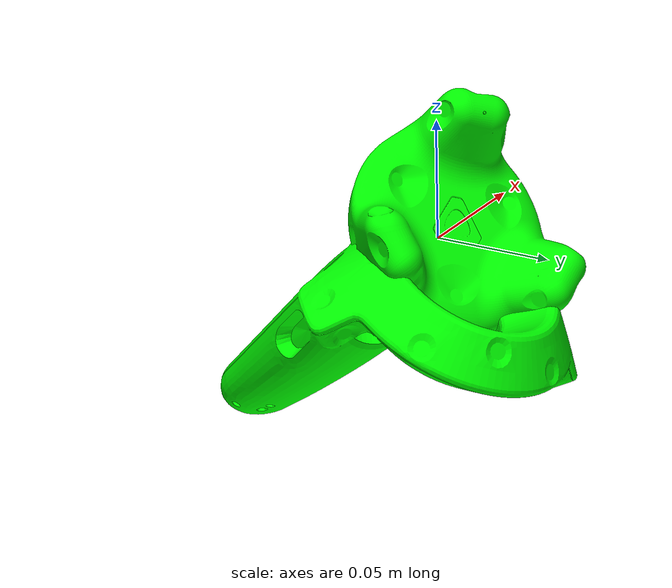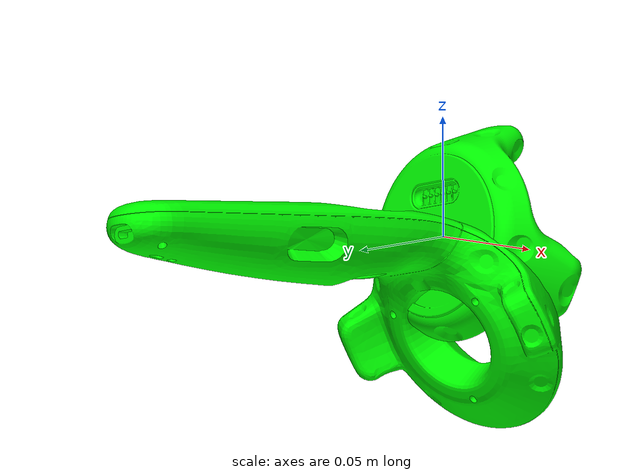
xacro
<?xml version="1.0"?>
<robot name="my_robo" xmlns:xacro="http://ros.org/wiki/xacro">
  <xacro:include filename="$(find s4_vive)/urdf/common.urdf.xacro"/>
  <xacro:include filename="$(find s4_vive)/urdf/s4_vive.urdf.xacro"/>

  <link name="world" />

  <xacro:s4_vive_controller prefix="vive0/controller0" parent="world" />
  <xacro:s4_vive_controller prefix="vive0/controller1" parent="world" />
  <xacro:s4_vive_tracker prefix="vive0/tracker0" parent="world" />
</robot>

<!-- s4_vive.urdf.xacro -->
<robot xmlns:xacro="http://ros.org/wiki/xacro">
  <xacro:macro name="s4_vive_controller" params="prefix parent">
    <link name="${prefix}/body_link">
      <visual>
        <origin rpy="0 0 0" xyz="0 0 0"/>
        <geometry>
          <mesh filename="package://s4_vive/stl/vive_controller.stl"/>
        </geometry>
        <material name="green">
          <color rgba="0 1 0 1"/>
        </material>
      </visual>
    </link>
    <joint name="${prefix}/body_joint" type="floating">
      <parent link="${parent}"/>
      <child  link="${prefix}/body_link"/>
      <origin xyz="0 0 0" rpy="0 0 0"/>
      <axis xyz="0 0 1"/>
      <limit effort="30" velocity="1.0" lower="-2.0" upper="2.0" />
    </joint>
    <link name="${prefix}/pointer_link" />
    <joint name="${prefix}/controller0/pointer0_joint" type="fixed">
      <parent link="${prefix}/body_link"/>
      <child  link="${prefix}/pointer_link"/>
      <origin xyz="0 0 -0.0685" rpy="0 1.01 0"/>
      <axis xyz="0 0 1"/>
      <limit effort="30" velocity="1.0" lower="-2.0" upper="2.0" />
    </joint>
    <link name="${prefix}/goal_link" />
    <joint name="${prefix}/goal_joint" type="floating">
      <parent link="${prefix}/pointer_link"/>
      <child  link="${prefix}/goal_link"/>
      <origin xyz="0 0 0" rpy="0 0 0"/>
      <axis xyz="0 0 1"/>
      <limit effort="30" velocity="1.0" lower="-2.0" upper="2.0" />
    </joint>
  </xacro:macro>

  <xacro:macro name="s4_vive_tracker" params="prefix parent">
    <link name="${prefix}/body_link">
      <visual>
        <origin rpy="0 0 0" xyz="-0.005 0 0"/>
        <geometry>
          <mesh filename="package://s4_vive/stl/vive_tracker.stl"/>
        </geometry>
        <material name="green">
          <color rgba="0 1 0 1"/>
        </material>
      </visual>
    </link>
    <joint name="${prefix}/body_joint" type="floating">
      <parent link="${parent}"/>
      <child  link="${prefix}/body_link"/>
      <origin xyz="0 0 0" rpy="0 0 0"/>
      <axis xyz="0 0 1"/>
      <limit effort="30" velocity="1.0" lower="-2.0" upper="2.0" />
    </joint>

    <link name="${prefix}/tracking_link"/>
    <joint name="${prefix}/tracking_joint" type="fixed">
      <parent link="${prefix}/body_link"/>
      <child  link="${prefix}/tracking_link"/>
      <origin xyz="-0.271 -0.025 0.050" rpy="-1.5707 0 -1.5707"/>
    </joint>
  </xacro:macro>
</robot>
